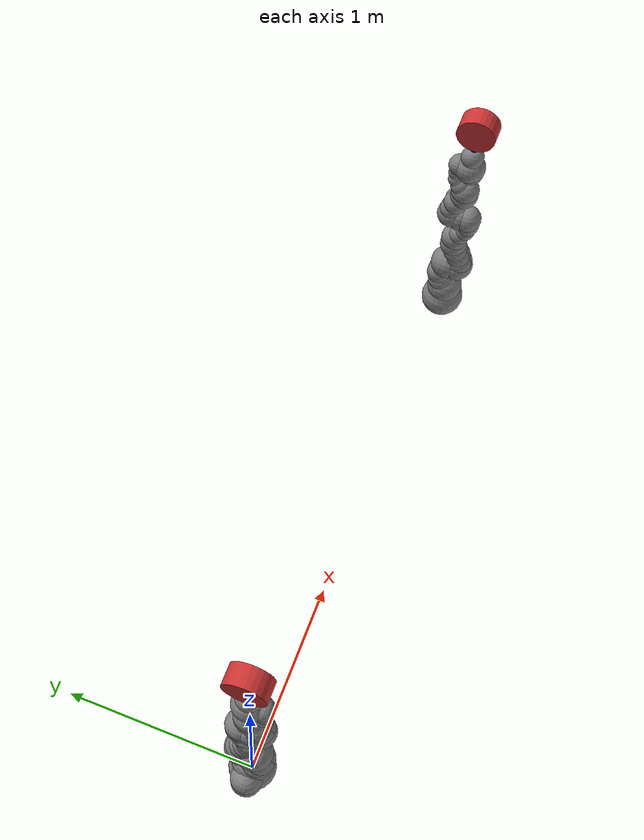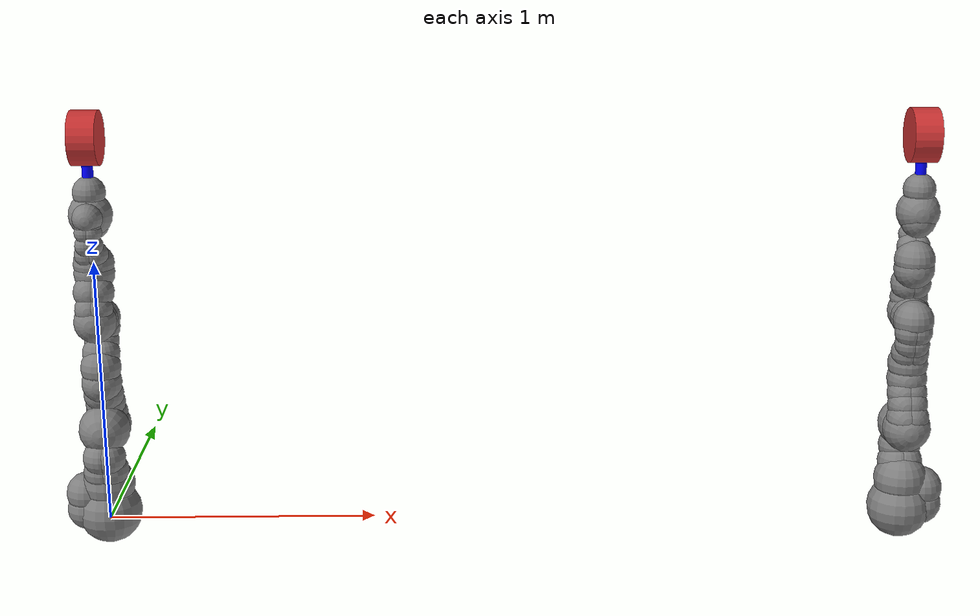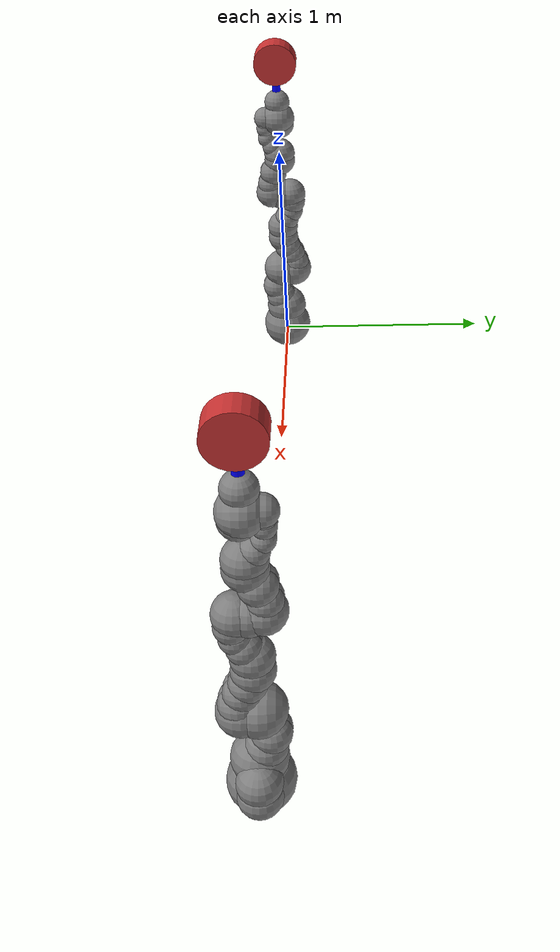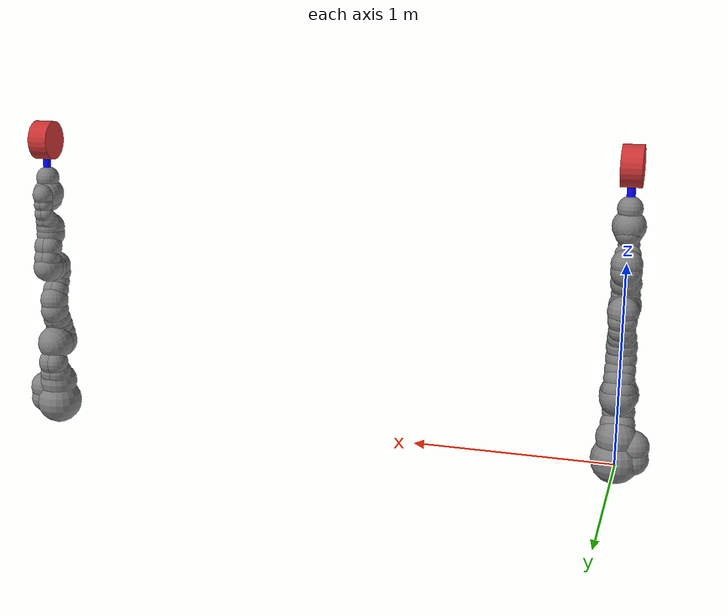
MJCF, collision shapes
<mujoco model="iiwa14_comp">
  <compiler angle="radian" meshdir="assets"/>

  <option integrator="implicitfast"/>

  <default>
    <default class="iiwa">
      <material specular="0.5" shininess="0.25"/>
      <joint axis="0 0 1"/>
      <general gaintype="fixed" biastype="affine" gainprm="2000" biasprm="0 -2000 -200"/>
      <default class="joint1">
        <joint range="-2.96706 2.96706"/>
        <general ctrlrange="-2.96706 2.96706"/>
        <default class="joint2">
          <joint range="-2.0944 2.0944"/>
          <general ctrlrange="-2.0944 2.0944"/>
        </default>
      </default>
      <default class="joint3">
        <joint range="-3.05433 3.05433"/>
        <general ctrlrange="-3.05433 3.05433"/>
      </default>
      <default class="visual">
        <geom type="mesh" contype="0" conaffinity="0" group="2" material="gray"/>
      </default>
      <default class="collision">
        <geom group="3"/>
      </default>
      <site size="0.001" rgba="1 0 0 1" group="4"/>
    </default>
  </default>

  <asset>
    <material class="iiwa" name="gray" rgba="0.4 0.4 0.4 1"/>
    <material class="iiwa" name="light_gray" rgba="0.6 0.6 0.6 1"/>
    <material class="iiwa" name="black" rgba="0 0 0 1"/>
    <material class="iiwa" name="orange" rgba="1 0.423529 0.0392157 1"/>

    <mesh file="link_0.obj"/>
    <mesh file="link_1.obj"/>
    <mesh file="link_2_orange.obj"/>
    <mesh file="link_2_grey.obj"/>
    <mesh file="link_3.obj"/>
    <mesh file="band.obj"/>
    <mesh file="kuka.obj"/>
    <mesh file="link_4_orange.obj"/>
    <mesh file="link_4_grey.obj"/>
    <mesh file="link_5.obj"/>
    <mesh file="link_6_orange.obj"/>
    <mesh file="link_6_grey.obj"/>
    <mesh file="link_7.obj"/>
  </asset>

  <worldbody>
    <light name="top" pos="0 0 2" mode="trackcom"/>
    <light name="top_opp" pos="3 0 2" mode="trackcom"/>
    <body name="base" childclass="iiwa" pos="0 0 0">
      <joint name="base_x_joint" type="slide" axis="1 0 0" range="-1 0" />
      <joint name="base_y_joint" type="slide" axis="0 1 0" range="-1 1" />
      <inertial mass="5" pos="-0.1 0 0.07" diaginertia="0.05 0.06 0.03"/>
      <geom class="visual" mesh="link_0"/>
      <geom class="collision" size="0.12" pos="0 0 0.03"/>
      <geom class="collision" size="0.08" pos="-0.08 0 0.103"/>
      <geom class="collision" size="0.08" pos="-0.08 0 0.04"/>
      <geom class="collision" size="0.1" pos="0 0 0.14"/>
      <body name="link1" pos="0 0 0.1575">
        <inertial mass="5.76" pos="0 -0.03 0.12" diaginertia="0.0333 0.033 0.0123"/>
        <joint name="joint1" class="joint1"/>
        <geom class="visual" mesh="link_1"/>
        <geom class="collision" size="0.08" pos="0 0 -0.0005"/>
        <geom class="collision" size="0.075" pos="0.01 -0.025 0.0425"/>
        <geom class="collision" size="0.075" pos="-0.01 -0.025 0.0425"/>
        <geom class="collision" size="0.07" pos="0.01 -0.045 0.1025"/>
        <geom class="collision" size="0.07" pos="-0.01 -0.045 0.1025"/>
        <body name="link2" pos="0 0 0.2025" quat="0 0 1 1">
          <inertial mass="6.35" pos="0.0003 0.059 0.042" diaginertia="0.0305 0.0304 0.011" quat="0 0 1 1"/>
          <joint name="joint2" class="joint2"/>
          <geom class="visual" material="orange" mesh="link_2_orange"/>
          <geom class="visual" mesh="link_2_grey"/>
          <geom class="collision" size="0.095" pos="0 0 -0.01"/>
          <geom class="collision" size="0.09" pos="0 0 0.045"/>
          <geom class="collision" size="0.07" pos="-0.01 0.04 0.054"/>
          <geom class="collision" size="0.065" pos="-0.01 0.09 0.04"/>
          <geom class="collision" size="0.065" pos="-0.01 0.13 0.02"/>
          <geom class="collision" size="0.07" pos="0.01 0.04 0.054"/>
          <geom class="collision" size="0.065" pos="0.01 0.09 0.04"/>
          <geom class="collision" size="0.065" pos="0.01 0.13 0.02"/>
          <geom class="collision" size="0.075" pos="0 0.18 0"/>
          <body name="link3" pos="0 0.2045 0" quat="0 0 1 1">
            <inertial mass="3.5" pos="0 0.03 0.13" diaginertia="0.025 0.0238 0.0076"/>
            <joint name="joint3" class="joint1"/>
            <geom class="visual" mesh="link_3"/>
            <geom class="visual" material="light_gray" mesh="band"/>
            <geom class="visual" material="black" mesh="kuka"/>
            <geom class="collision" size="0.075" pos="0 0 0.0355"/>
            <geom class="collision" size="0.06" pos="0.01 0.023 0.0855"/>
            <geom class="collision" size="0.055" pos="0.01 0.048 0.1255"/>
            <geom class="collision" size="0.06" pos="0.01 0.056 0.1755"/>
            <geom class="collision" size="0.06" pos="-0.01 0.023 0.0855"/>
            <geom class="collision" size="0.055" pos="-0.01 0.048 0.1255"/>
            <geom class="collision" size="0.06" pos="-0.01 0.056 0.1755"/>
            <geom class="collision" size="0.075" pos="0 0.045 0.2155"/>
            <geom class="collision" size="0.075" pos="0 0 0.2155"/>
            <body name="link4" pos="0 0 0.2155" quat="1 1 0 0">
              <inertial mass="3.5" pos="0 0.067 0.034" diaginertia="0.017 0.0164 0.006" quat="1 1 0 0"/>
              <joint name="joint4" class="joint2"/>
              <geom class="visual" material="orange" mesh="link_4_orange"/>
              <geom class="visual" mesh="link_4_grey"/>
              <geom class="collision" size="0.078" pos="0 0.01 0.046"/>
              <geom class="collision" size="0.06" pos="0.01 0.06 0.052"/>
              <geom class="collision" size="0.065" pos="0.01 0.12 0.034"/>
              <geom class="collision" size="0.06" pos="-0.01 0.06 0.052"/>
              <geom class="collision" size="0.065" pos="-0.01 0.12 0.034"/>
              <geom class="collision" size="0.075" pos="0 0.184 0"/>
              <body name="link5" pos="0 0.1845 0" quat="0 0 1 1">
                <inertial mass="3.5" pos="0.0001 0.021 0.076" diaginertia="0.01 0.0087 0.00449"/>
                <joint name="joint5" class="joint1"/>
                <geom class="visual" mesh="link_5"/>
                <geom class="visual" material="light_gray" mesh="band"/>
                <geom class="visual" material="black" mesh="kuka"/>
                <geom class="collision" size="0.075" pos="0 0 0.0335"/>
                <geom class="collision" size="0.05" pos="-0.012 0.031 0.0755"/>
                <geom class="collision" size="0.05" pos="0.012 0.031 0.0755"/>
                <geom class="collision" size="0.04" pos="-0.012 0.06 0.1155"/>
                <geom class="collision" size="0.04" pos="0.012 0.06 0.1155"/>
                <geom class="collision" size="0.04" pos="-0.01 0.065 0.1655"/>
                <geom class="collision" size="0.04" pos="0.01 0.065 0.1655"/>
                <geom class="collision" size="0.035" pos="-0.012 0.065 0.1855"/>
                <geom class="collision" size="0.035" pos="0.012 0.065 0.1855"/>
                <body name="link6" pos="0 0 0.2155" quat="1 1 0 0">
                  <inertial mass="1.8" pos="0 0.0006 0.0004" diaginertia="0.0049 0.0047 0.0036" quat="1 1 0 0"/>
                  <joint name="joint6" class="joint2"/>
                  <geom class="visual" material="orange" mesh="link_6_orange"/>
                  <geom class="visual" mesh="link_6_grey"/>
                  <geom class="collision" size="0.055" pos="0 0 -0.059"/>
                  <geom class="collision" size="0.065" pos="0 -0.03 0.011"/>
                  <geom class="collision" size="0.08"/>
                  <body name="link7" pos="0 0.081 0" quat="0 0 1 1">
                    <inertial mass="1.2" pos="0 0 0.02" diaginertia="0.001 0.001 0.001"/>
                    <joint name="joint7" class="joint3"/>
                    <geom class="visual" mesh="link_7"/>
                    <geom class="collision" size="0.06" pos="0 0 0.001"/>
                    <site pos="0 0 0.045" name="attachment_site"/>

                    <body name="tennis_racket" pos="0 0 0" quat="0 0.7068252 0 0.7073883">
                      <geom name="racket" type="cylinder" pos="0.2 0 -0.0" size="0.1 0.05" rgba="0.8 0.2 0.2 1" material="black"/>
                      <geom name="handle1" type="cylinder" pos="0.05 0 0" size="0.02 0.05" quat="0 0.7068252 0 0.7073883" rgba="0 0 1 1" contype="0" conaffinity="0"/>
                    </body>
                  </body>
                </body>
              </body>
            </body>
          </body>
        </body>
      </body>
    </body>

    <body name="base_opp" childclass="iiwa" pos="3 0 0" quat="0 0 0 1">
      <joint name="base_x_joint_opp" type="slide" axis="1 0 0" range="-1 0" />
      <joint name="base_y_joint_opp" type="slide" axis="0 1 0" range="-1 1" />
      <inertial mass="5" pos="-0.1 0 0.07" diaginertia="0.05 0.06 0.03"/>
      <geom class="visual" mesh="link_0"/>
      <geom class="collision" size="0.12" pos="0 0 0.03"/>
      <geom class="collision" size="0.08" pos="-0.08 0 0.103"/>
      <geom class="collision" size="0.08" pos="-0.08 0 0.04"/>
      <geom class="collision" size="0.1" pos="0 0 0.14"/>
      <body name="link1_opp" pos="0 0 0.1575">
        <inertial mass="5.76" pos="0 -0.03 0.12" diaginertia="0.0333 0.033 0.0123"/>
        <joint name="joint1_opp" class="joint1"/>
        <geom class="visual" mesh="link_1"/>
        <geom class="collision" size="0.08" pos="0 0 -0.0005"/>
        <geom class="collision" size="0.075" pos="0.01 -0.025 0.0425"/>
        <geom class="collision" size="0.075" pos="-0.01 -0.025 0.0425"/>
        <geom class="collision" size="0.07" pos="0.01 -0.045 0.1025"/>
        <geom class="collision" size="0.07" pos="-0.01 -0.045 0.1025"/>
        <body name="link2_opp" pos="0 0 0.2025" quat="0 0 1 1">
          <inertial mass="6.35" pos="0.0003 0.059 0.042" diaginertia="0.0305 0.0304 0.011" quat="0 0 1 1"/>
          <joint name="joint2_opp" class="joint2"/>
          <geom class="visual" material="orange" mesh="link_2_orange"/>
          <geom class="visual" mesh="link_2_grey"/>
          <geom class="collision" size="0.095" pos="0 0 -0.01"/>
          <geom class="collision" size="0.09" pos="0 0 0.045"/>
          <geom class="collision" size="0.07" pos="-0.01 0.04 0.054"/>
          <geom class="collision" size="0.065" pos="-0.01 0.09 0.04"/>
          <geom class="collision" size="0.065" pos="-0.01 0.13 0.02"/>
          <geom class="collision" size="0.07" pos="0.01 0.04 0.054"/>
          <geom class="collision" size="0.065" pos="0.01 0.09 0.04"/>
          <geom class="collision" size="0.065" pos="0.01 0.13 0.02"/>
          <geom class="collision" size="0.075" pos="0 0.18 0"/>
          <body name="link3_opp" pos="0 0.2045 0" quat="0 0 1 1">
            <inertial mass="3.5" pos="0 0.03 0.13" diaginertia="0.025 0.0238 0.0076"/>
            <joint name="joint3_opp" class="joint1"/>
            <geom class="visual" mesh="link_3"/>
            <geom class="visual" material="light_gray" mesh="band"/>
            <geom class="visual" material="black" mesh="kuka"/>
            <geom class="collision" size="0.075" pos="0 0 0.0355"/>
            <geom class="collision" size="0.06" pos="0.01 0.023 0.0855"/>
            <geom class="collision" size="0.055" pos="0.01 0.048 0.1255"/>
            <geom class="collision" size="0.06" pos="0.01 0.056 0.1755"/>
            <geom class="collision" size="0.06" pos="-0.01 0.023 0.0855"/>
            <geom class="collision" size="0.055" pos="-0.01 0.048 0.1255"/>
            <geom class="collision" size="0.06" pos="-0.01 0.056 0.1755"/>
            <geom class="collision" size="0.075" pos="0 0.045 0.2155"/>
            <geom class="collision" size="0.075" pos="0 0 0.2155"/>
            <body name="link4_opp" pos="0 0 0.2155" quat="1 1 0 0">
              <inertial mass="3.5" pos="0 0.067 0.034" diaginertia="0.017 0.0164 0.006" quat="1 1 0 0"/>
              <joint name="joint4_opp" class="joint2"/>
              <geom class="visual" material="orange" mesh="link_4_orange"/>
              <geom class="visual" mesh="link_4_grey"/>
              <geom class="collision" size="0.078" pos="0 0.01 0.046"/>
              <geom class="collision" size="0.06" pos="0.01 0.06 0.052"/>
              <geom class="collision" size="0.065" pos="0.01 0.12 0.034"/>
              <geom class="collision" size="0.06" pos="-0.01 0.06 0.052"/>
              <geom class="collision" size="0.065" pos="-0.01 0.12 0.034"/>
              <geom class="collision" size="0.075" pos="0 0.184 0"/>
              <body name="link5_opp" pos="0 0.1845 0" quat="0 0 1 1">
                <inertial mass="3.5" pos="0.0001 0.021 0.076" diaginertia="0.01 0.0087 0.00449"/>
                <joint name="joint5_opp" class="joint1"/>
                <geom class="visual" mesh="link_5"/>
                <geom class="visual" material="light_gray" mesh="band"/>
                <geom class="visual" material="black" mesh="kuka"/>
                <geom class="collision" size="0.075" pos="0 0 0.0335"/>
                <geom class="collision" size="0.05" pos="-0.012 0.031 0.0755"/>
                <geom class="collision" size="0.05" pos="0.012 0.031 0.0755"/>
                <geom class="collision" size="0.04" pos="-0.012 0.06 0.1155"/>
                <geom class="collision" size="0.04" pos="0.012 0.06 0.1155"/>
                <geom class="collision" size="0.04" pos="-0.01 0.065 0.1655"/>
                <geom class="collision" size="0.04" pos="0.01 0.065 0.1655"/>
                <geom class="collision" size="0.035" pos="-0.012 0.065 0.1855"/>
                <geom class="collision" size="0.035" pos="0.012 0.065 0.1855"/>
                <body name="link6_opp" pos="0 0 0.2155" quat="1 1 0 0">
                  <inertial mass="1.8" pos="0 0.0006 0.0004" diaginertia="0.0049 0.0047 0.0036" quat="1 1 0 0"/>
                  <joint name="joint6_opp" class="joint2"/>
                  <geom class="visual" material="orange" mesh="link_6_orange"/>
                  <geom class="visual" mesh="link_6_grey"/>
                  <geom class="collision" size="0.055" pos="0 0 -0.059"/>
                  <geom class="collision" size="0.065" pos="0 -0.03 0.011"/>
                  <geom class="collision" size="0.08"/>
                  <body name="link7_opp" pos="0 0.081 0" quat="0 0 1 1">
                    <inertial mass="1.2" pos="0 0 0.02" diaginertia="0.001 0.001 0.001"/>
                    <joint name="joint7_opp" class="joint3"/>
                    <geom class="visual" mesh="link_7"/>
                    <geom class="collision" size="0.06" pos="0 0 0.001"/>
                    <site pos="0 0 0.045" name="attachment_site_opp"/>

                    <body name="tennis_racket_opp" pos="0 0 0" quat="0 0.7068252 0 0.7073883">
                      <geom name="racket_opp" type="cylinder" pos="0.2 0 -0.0" size="0.1 0.05" rgba="0.8 0.2 0.2 1" material="black"/>
                      <geom name="handle1_opp" type="cylinder" pos="0.05 0 0" size="0.02 0.05" quat="0 0.7068252 0 0.7073883" rgba="0 0 1 1" contype="0" conaffinity="0"/>
                    </body>
                  </body>
                </body>
              </body>
            </body>
          </body>
        </body>
      </body>
    </body>
  </worldbody>

  <contact>
    <exclude body1="base" body2="link1"/>
    <exclude body1="base" body2="link2"/>
    <exclude body1="base" body2="link3"/>
    <exclude body1="link1" body2="link3"/>
    <exclude body1="link3" body2="link5"/>
    <exclude body1="link4" body2="link7"/>
    <exclude body1="link5" body2="link7"/>

    <exclude body1="base_opp" body2="link1_opp"/>
    <exclude body1="base_opp" body2="link2_opp"/>
    <exclude body1="base_opp" body2="link3_opp"/>
    <exclude body1="link1_opp" body2="link3_opp"/>
    <exclude body1="link3_opp" body2="link5_opp"/>
    <exclude body1="link4_opp" body2="link7_opp"/>
    <exclude body1="link5_opp" body2="link7_opp"/>
  </contact>

  <actuator>
    <general name="actuator1" joint="joint1" class="joint1"/>
    <general name="actuator2" joint="joint2" class="joint2"/>
    <general name="actuator3" joint="joint3" class="joint1"/>
    <general name="actuator4" joint="joint4" class="joint2"/>
    <general name="actuator5" joint="joint5" class="joint1"/>
    <general name="actuator6" joint="joint6" class="joint2"/>
    <general name="actuator7" joint="joint7" class="joint3"/>

    <general name="actuator1_opp" joint="joint1_opp" class="joint1"/>
    <general name="actuator2_opp" joint="joint2_opp" class="joint2"/>
    <general name="actuator3_opp" joint="joint3_opp" class="joint1"/>
    <general name="actuator4_opp" joint="joint4_opp" class="joint2"/>
    <general name="actuator5_opp" joint="joint5_opp" class="joint1"/>
    <general name="actuator6_opp" joint="joint6_opp" class="joint2"/>
    <general name="actuator7_opp" joint="joint7_opp" class="joint3"/>
  </actuator>

</mujoco>
